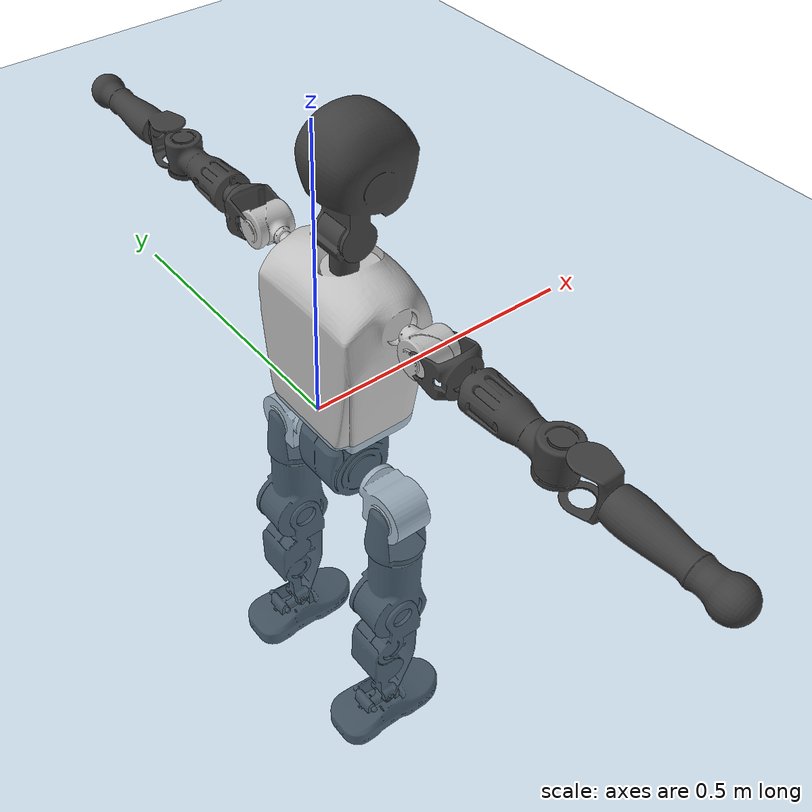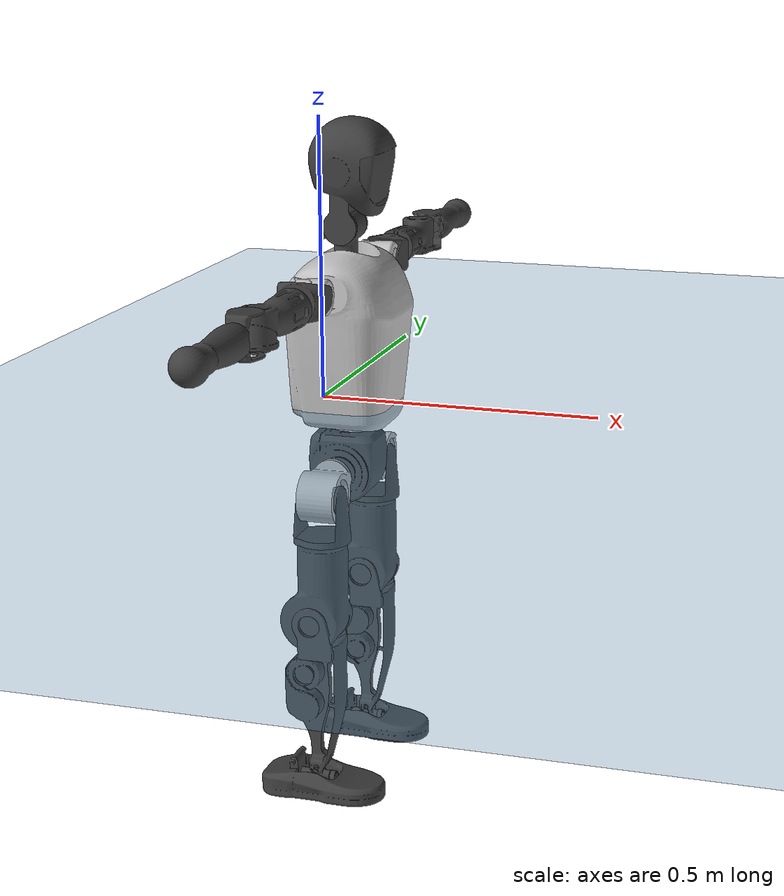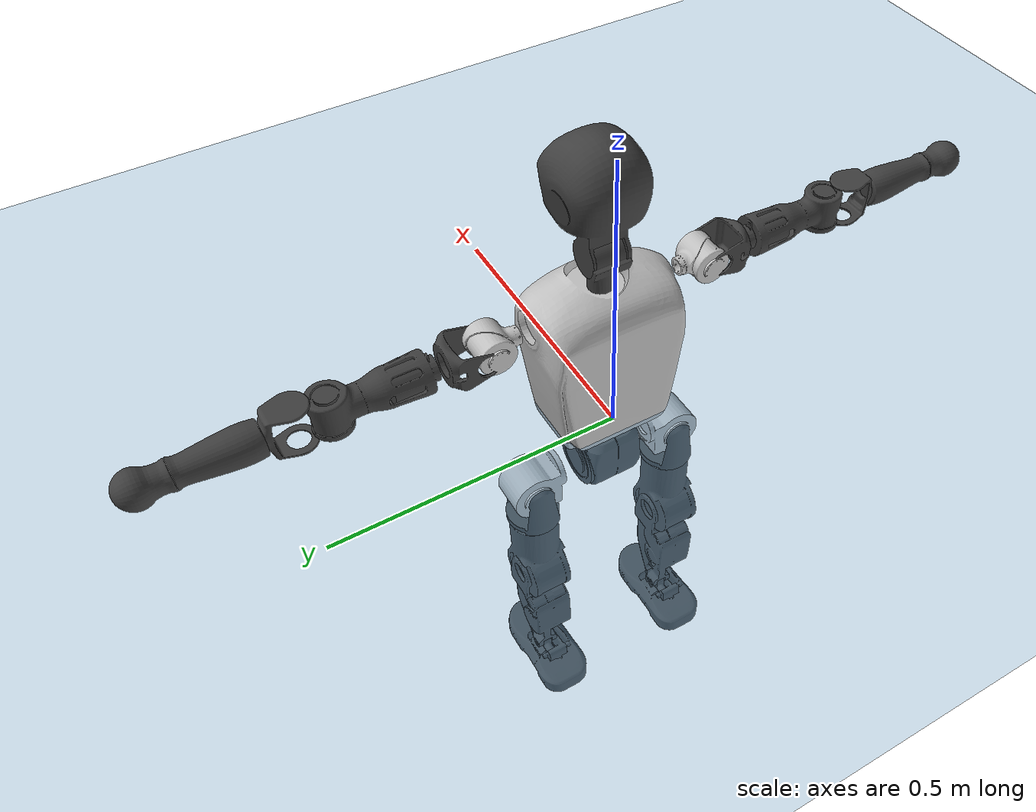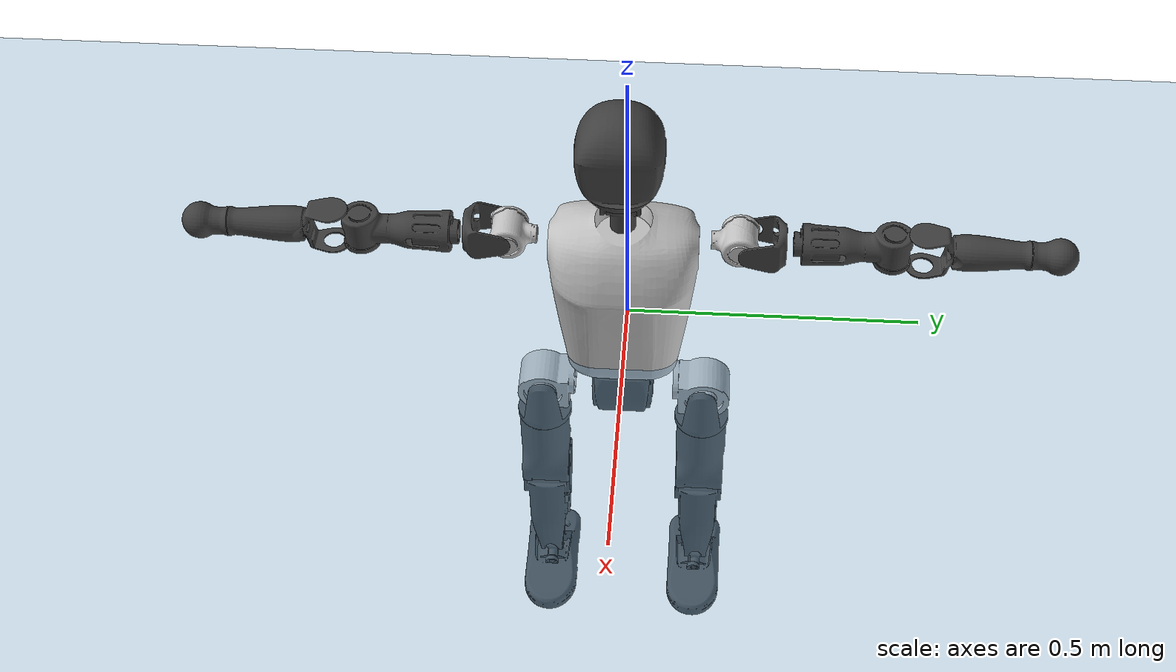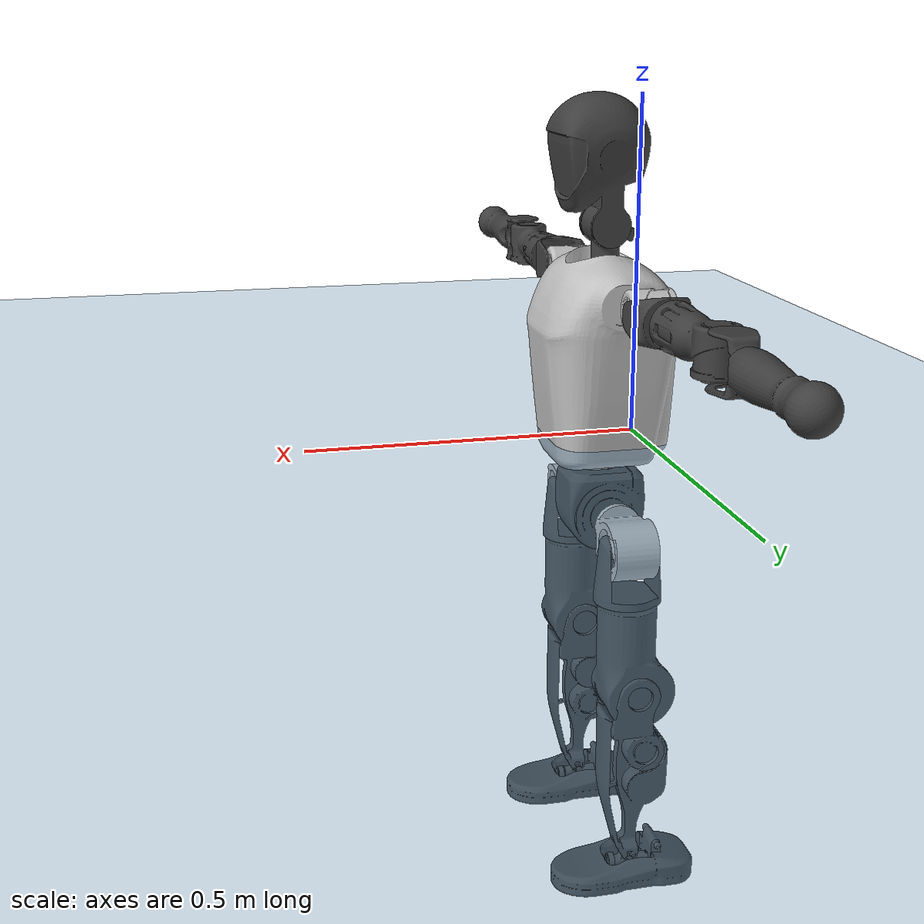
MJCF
<mujoco model="T1">
  <compiler angle="radian" assetdir="assets" balanceinertia="true" inertiafromgeom="false"/>

  <option timestep="0.005" density="1.2" viscosity="2e-05"/>

  <size nkey="1"/>

  <visual>
    <quality shadowsize="8192"/>
    <map shadowclip="0.5"/>
  </visual>

  <default>
    <default class="/">
      <joint armature="0.01" damping="0.01" frictionloss="0.1"/>
      <geom contype="0" conaffinity="0" group="1" solref="-1000 -80"/>
      <site size="0.01 0.005 0.005" group="5"/>
      <general forcelimited="true" biastype="affine" gainprm="25" biasprm="0 -25 -0.6"/>
      <default class="t1">
        <geom rgba="0.25 0.25 0.25 1"/>
        <default class="visual">
          <geom type="mesh" group="2"/>
        </default>
        <default class="collision">
          <geom group="3"/>
        </default>
        <default class="foot">
          <geom size="0.1115 0.05 0.015" type="box" condim="6" group="4" priority="1" solimp="0.015 1 0.015"/>
        </default>
        <default class="reward_collision_sphere">
          <geom group="5" rgba="1 0 0 1"/>
        </default>
      </default>
    </default>
  </default>

  <asset>
    <texture type="skybox" colorspace="auto" name="//unnamed_texture_0" builtin="gradient" rgb1="0.95 0.95 0.95" rgb2="0.95 0.95 0.95" width="100" height="600"/>
    <texture type="2d" colorspace="auto" name="texplane" builtin="checker" rgb1="0.345 0.575 0.748" rgb2="0.345 0.575 0.748" markrgb="1 1 1" width="512" height="512"/>
    <material name="MatPlane" class="/" texture="texplane" texuniform="true" texrepeat="2 2" specular="0.9"/>
    <mesh name="Trunk" class="/" file="Trunk.stl"/>
    <mesh name="H1" class="/" file="H1.stl"/>
    <mesh name="H2" class="/" file="H2.stl"/>
    <mesh name="AL1" class="/" file="AL1.stl"/>
    <mesh name="AL2" class="/" file="AL2.stl"/>
    <mesh name="AL3" class="/" file="AL3.stl"/>
    <mesh name="left_hand_link" class="/" file="left_hand_link.stl"/>
    <mesh name="AR1" class="/" file="AR1.stl"/>
    <mesh name="AR2" class="/" file="AR2.stl"/>
    <mesh name="AR3" class="/" file="AR3.stl"/>
    <mesh name="right_hand_link" class="/" file="right_hand_link.stl"/>
    <mesh name="Waist" class="/" file="Waist.stl"/>
    <mesh name="Hip_Pitch_Left" class="/" file="Hip_Pitch_Left.stl"/>
    <mesh name="Hip_Roll_Left" class="/" file="Hip_Roll_Left.stl"/>
    <mesh name="Hip_Yaw_Left" class="/" file="Hip_Yaw_Left.stl"/>
    <mesh name="Shank_Left" class="/" file="Shank_Left.stl"/>
    <mesh name="Ankle_Cross_Left" class="/" file="Ankle_Cross_Left.stl"/>
    <mesh name="left_foot_link" class="/" file="left_foot_link.stl"/>
    <mesh name="Hip_Pitch_Right" class="/" file="Hip_Pitch_Right.stl"/>
    <mesh name="Hip_Roll_Right" class="/" file="Hip_Roll_Right.stl"/>
    <mesh name="Hip_Yaw_Right" class="/" file="Hip_Yaw_Right.stl"/>
    <mesh name="Shank_Right" class="/" file="Shank_Right.stl"/>
    <mesh name="Ankle_Cross_Right" class="/" file="Ankle_Cross_Right.stl"/>
    <mesh name="right_foot_link" class="/" file="right_foot_link.stl"/>
  </asset>

  <worldbody>
    <geom name="floor" class="/" size="100 100 0.125" type="plane" group="0" material="MatPlane"/>
    <light name="toplight_shadow" class="/" pos="0 0 5" dir="0.0990148 0.0990148 -0.990148" type="directional" ambient="0.04 0.04 0.04" diffuse="0.55 0.55 0.55" specular="0.12 0.12 0.12"/>
    <light name="toplight_fill" class="/" pos="0 0 5" dir="0.0990148 0.0990148 -0.990148" type="directional" castshadow="false" ambient="0.04 0.04 0.04" diffuse="0.3 0.3 0.3" specular="0.08 0.08 0.08"/>
    <body name="trunk" childclass="t1" pos="-0.000304772 -0.00225441 -0.00200486" quat="1 -0.000291157 -6.59039e-05 8.947e-05">
      <inertial pos="0.0476598 0.000162216 0.110409" quat="0.999937 -0.00186512 -0.00110731 -0.0110184" mass="13.5534" diaginertia="0.0340812 0.31139 0.0634669"/>
      <joint name="//unnamed_joint_0" type="free" armature="0" damping="0" frictionloss="0"/>
      <geom name="//unnamed_geom_1" class="visual" rgba="0.76 0.76 0.76 1" mesh="Trunk"/>
      <geom name="//unnamed_geom_2" class="collision" size="0.0799592 0.106612 0.159918" pos="0.0495886 0 0.124487" type="box"/>
      <geom name="//unnamed_geom_3" class="reward_collision_sphere" size="0.122604" pos="0.0495886 0 0.10374"/>
      <geom name="//unnamed_geom_4" class="reward_collision_sphere" size="0.0159918" pos="0.0495886 0.113432 0"/>
      <geom name="//unnamed_geom_5" class="reward_collision_sphere" size="0.0159918" pos="0.0495886 -0.113432 0"/>
      <geom name="//unnamed_geom_6" class="reward_collision_sphere" size="0.0159918" pos="0.0495886 0.142791 0.186731"/>
      <geom name="//unnamed_geom_7" class="reward_collision_sphere" size="0.0159918" pos="0.0495886 -0.142791 0.186731"/>
      <site name="imu" pos="-0.0141418 -0.0136119 0.0065357" size="0.0106612"/>
      <camera name="track" pos="0 -2.66899 0" quat="0.707107 0.707107 0 0" mode="trackcom"/>
      <camera name="ego_camera" pos="0.10083 0 0.435706" quat="-0.5 -0.5 0.5 0.5"/>
      <body name="H1" pos="0.0485184 -0.00190264 0.253467" quat="1 0.000173643 2.99389e-05 0.000155276">
        <inertial pos="-0.000789262 -0.00182187 0.0592808" quat="0.761488 -0.0177958 0.00756812 0.647891" mass="0.528411" diaginertia="9.30931e-05 0.000928566 0.000178531"/>
        <joint name="AAHead_yaw" pos="0 0 0" axis="0.00671597 0.00948489 0.999932" range="-1.56615 1.54496" armature="0.0112982" damping="0.0239695" frictionloss="0.107928"/>
        <geom name="//unnamed_geom_8" class="visual" mesh="H1"/>
        <body name="H2" pos="0.000137426 -0.00236925 0.0618966" quat="1 -1.61168e-05 -0.000166824 -0.000405907">
          <inertial pos="0.00356075 0.000431609 0.100339" quat="0.988086 0.111237 -0.0732515 -0.0771186" mass="0.757654" diaginertia="0.000785074 0.0080364 0.00210972"/>
          <joint name="Head_pitch" pos="0 0 0" axis="-0.00305292 -0.999993 -0.00208903" range="-1.20131 0.342131" armature="0.0104263" damping="0.00958796" frictionloss="0.0919023"/>
          <geom name="//unnamed_geom_9" class="visual" mesh="H2"/>
          <geom name="//unnamed_geom_10" class="collision" size="0.0852898" pos="0.00826477 0 0.114114"/>
          <geom name="//unnamed_geom_11" class="reward_collision_sphere" size="0.0959511" pos="0.0165295 0 0.10374"/>
        </body>
      </body>
      <body name="AL1" pos="0.0456292 0.141261 0.22469" quat="1 -3.53482e-06 -0.00014675 -0.000413603">
        <inertial pos="-0.000535369 0.0571517 -0.00276652" quat="0.507769 0.494578 -0.500862 0.49669" mass="0.653832" diaginertia="0.000544893 0.0055913 0.000349567"/>
        <joint name="Left_Shoulder_Pitch" pos="0 0 0" axis="-0.000751304 0.999998 -0.00192377" stiffness="0.000434929" range="-3.28766 1.25881" armature="0.0105079" damping="0" frictionloss="0.108143"/>
        <geom name="//unnamed_geom_12" class="visual" rgba="0.76 0.76 0.76 1" mesh="AL1"/>
        <body name="AL2" pos="0.000886189 0.064909 -0.00275734" quat="0.999999 -0.00116858 -7.58893e-05 0.000535326">
          <inertial pos="0.00441056 0.0509834 0.00269963" quat="0.487997 0.511721 -0.487985 0.511733" mass="0.197883" diaginertia="0.00015148 0.00144114 0.000213012"/>
          <joint name="Left_Shoulder_Roll" pos="0 0 0" axis="-0.999988 -0.00409954 -0.00274328" range="-1.57934 1.73817" armature="0.0113804" damping="0.005864" frictionloss="0.103043"/>
          <geom name="//unnamed_geom_13" class="visual" mesh="AL2"/>
          <body name="AL3" pos="0.00051958 0.0807984 0.00326964" quat="1 -0.00036283 0.000232186 0.000107254">
            <inertial pos="-0.00101057 0.112856 -0.0029864" quat="0.698219 0.715846 -0.00543156 -0.00498264" mass="1.30668" diaginertia="0.0049945 0.0558283 0.000780186"/>
            <joint name="Left_Elbow_Pitch" pos="0 0 0" axis="-0.012528 -0.999916 -0.00335677" stiffness="0.00736657" range="-2.27263 2.29117" armature="0.0106363" damping="0.0234641" frictionloss="0.109485"/>
            <geom name="//unnamed_geom_14" class="visual" mesh="AL3"/>
            <geom name="//unnamed_geom_15" class="collision" size="0.0319837 0.0799592" pos="0 0.0667248 0" quat="0.707105 0.707108 0 0" type="cylinder"/>
            <geom name="//unnamed_geom_16" class="reward_collision_sphere" size="0.0383804"/>
            <body name="left_hand_link" pos="0.0028624 0.197664 -0.000453552" quat="1 -4.21065e-06 2.18981e-06 -1.20989e-06">
              <inertial pos="-0.000949963 0.146806 -0.000465684" quat="0.713241 0.700914 0.00237205 -0.00110805" mass="0.397833" diaginertia="0.00307208 0.0348349 0.000259946"/>
              <joint name="Left_Elbow_Yaw" pos="0 0 0" axis="0.00380327 0.00463017 0.999982" stiffness="0.000202276" range="-2.46591 0.0198041" armature="0.0104434" damping="0.0106287" frictionloss="0.118538"/>
              <geom name="//unnamed_geom_17" class="visual" mesh="left_hand_link"/>
              <geom name="//unnamed_geom_18" class="collision" size="0.0319837 0.0932858" pos="0 0.173485 0" quat="0.707105 0.707108 0 0" type="cylinder"/>
              <geom name="//unnamed_geom_19" class="reward_collision_sphere" size="0.0533062"/>
              <geom name="//unnamed_geom_20" class="reward_collision_sphere" size="0.0373143" pos="0 0.146795 0"/>
              <geom name="//unnamed_geom_21" class="reward_collision_sphere" size="0.0373143" pos="0 0.286917 0"/>
            </body>
          </body>
        </body>
      </body>
      <body name="AR1" pos="0.0498482 -0.141387 0.226572" quat="0.999999 0.00110053 -0.000156044 -7.79534e-05">
        <inertial pos="-0.00359447 -0.0597038 -0.00112673" quat="0.502498 0.492279 -0.506564 0.498547" mass="0.677112" diaginertia="0.000544993 0.00583318 0.00037438"/>
        <joint name="Right_Shoulder_Pitch" pos="0 0 0" axis="0.00637406 -0.999964 -0.00553773" stiffness="0.000600283" range="-1.23317 3.31539" armature="0.0104292" damping="0.000878597" frictionloss="0.103022"/>
        <geom name="//unnamed_geom_22" class="visual" rgba="0.76 0.76 0.76 1" mesh="AR1"/>
        <body name="AR2" pos="-9.49875e-05 -0.0617769 0.00252595" quat="1 -2.63043e-05 -1.34525e-05 2.53439e-05">
          <inertial pos="0.000227025 -0.0506781 0.000707973" quat="0.507781 0.487454 -0.513333 0.490955" mass="0.19686" diaginertia="0.000164417 0.00149565 0.000225513"/>
          <joint name="Right_Shoulder_Roll" pos="0 0 0" axis="-0.999999 -0.00148674 1.6679e-05" range="-1.73873 1.57733" armature="0.0107585" damping="0.0071852" frictionloss="0.113712"/>
          <geom name="//unnamed_geom_23" class="visual" mesh="AR2"/>
          <body name="AR3" pos="0.00237571 -0.0783158 -0.0026751" quat="0.999999 -0.00107088 -5.40558e-05 -0.00107768">
            <inertial pos="0.00153538 -0.113144 -0.000931598" quat="0.709554 0.704521 -0.0134059 -0.00219721" mass="1.27689" diaginertia="0.00515034 0.0557967 0.000752298"/>
            <joint name="Right_Elbow_Pitch" pos="0 0 0" axis="0.00119981 0.999942 0.010682" range="-2.26429 2.30362" armature="0.010485" damping="0.011818" frictionloss="0.10915"/>
            <geom name="//unnamed_geom_24" class="visual" mesh="AR3"/>
            <geom name="//unnamed_geom_25" class="collision" size="0.0319837 0.0799592" pos="0 -0.0667248 0" quat="0.707105 0.707108 0 0" type="cylinder"/>
            <geom name="//unnamed_geom_26" class="reward_collision_sphere" size="0.0383804"/>
            <body name="right_hand_link" pos="-0.00136494 -0.194411 0.000133279" quat="0.999999 -0.000120144 0.0013038 0.000512444">
              <inertial pos="-0.00046147 -0.143575 0.00295351" quat="0.703917 0.71028 0.00140446 0.00150559" mass="0.402435" diaginertia="0.00328509 0.0359932 0.000258336"/>
              <joint name="Right_Elbow_Yaw" pos="0 0 0" axis="0.00192288 0.00377064 0.999991" range="0.0513041 2.44766" armature="0.0111848" damping="0.00431358" frictionloss="0.111589"/>
              <geom name="//unnamed_geom_27" class="visual" mesh="right_hand_link"/>
              <geom name="//unnamed_geom_28" class="collision" size="0.0319837 0.0932858" pos="0 -0.173485 0" quat="0.707105 0.707108 0 0" type="cylinder"/>
              <geom name="//unnamed_geom_29" class="reward_collision_sphere" size="0.0533062"/>
              <geom name="//unnamed_geom_30" class="reward_collision_sphere" size="0.0373143" pos="0 -0.146795 0"/>
              <geom name="//unnamed_geom_31" class="reward_collision_sphere" size="0.0373143" pos="0 -0.286917 0"/>
            </body>
          </body>
        </body>
      </body>
      <body name="Waist" pos="0.0479113 -0.00194076 -0.119283" quat="0.999999 0.000122711 0.000717834 0.000879917">
        <inertial pos="0.00222677 0.000455032 0.00804497" quat="0.983138 0.000507768 -0.182813 0.00433793" mass="2.92601" diaginertia="0.00199155 0.0219117 0.00564718"/>
        <joint name="Waist" pos="0 0 0" axis="-0.00656259 -0.00924172 0.999936" range="-1.62641 1.5751" armature="0.0119421" damping="0.0234702" frictionloss="0.105743"/>
        <geom name="//unnamed_geom_32" class="visual" mesh="Waist"/>
        <body name="Hip_Pitch_Left" pos="0.000408163 0.14348 -0.00026089" quat="1 0.000301671 -5.16211e-05 -0.000369321">
          <inertial pos="0.00135367 -0.00768099 -0.0162609" quat="0.974178 0.225081 0.0101872 0.0145467" mass="1.25257" diaginertia="0.000699904 0.00639263 0.00151632"/>
          <joint name="Left_Hip_Pitch" pos="0 0 0" axis="0.00578482 0.999981 0.00192155" stiffness="0.00941989" range="-1.79693 1.5923" armature="0.0110711" damping="0.0242521" frictionloss="0.118275"/>
          <geom name="//unnamed_geom_33" class="visual" rgba="0.76 0.76 0.76 1" mesh="Hip_Pitch_Left"/>
          <body name="Hip_Roll_Left" pos="0.000647166 -0.00323787 -0.0226156" quat="1 0.000233643 -0.000531791 -0.000340536">
            <inertial pos="-0.00192552 -0.000323639 -0.0529026" quat="0.706486 -0.00327255 -0.00573631 0.707696" mass="0.475081" diaginertia="0.000672381 0.00682811 0.00063931"/>
            <joint name="Left_Hip_Roll" pos="0 0 0" axis="-0.999968 -0.00323881 -0.00724772" stiffness="0.00608832" range="-1.56576 0.21554" armature="0.0112506" damping="0.00067642" frictionloss="0.0915046"/>
            <geom name="//unnamed_geom_34" class="visual" mesh="Hip_Roll_Left"/>
            <geom name="//unnamed_geom_35" class="reward_collision_sphere" size="0.0586368"/>
            <body name="Hip_Yaw_Left" pos="-0.00292353 0.000600175 -0.085524" quat="1 3.39507e-07 1.86721e-06 1.47934e-05">
              <inertial pos="-0.00763832 0.001685 -0.093163" quat="0.695184 -0.0342895 -0.0328335 0.717262" mass="2.59291" diaginertia="0.0101213 0.106772 0.00317798"/>
              <joint name="Left_Hip_Yaw" pos="0 0 0" axis="-0.00192787 0.00129327 -0.999997" range="-1.06475 1.03385" armature="0.010559" damping="0" frictionloss="0.104148"/>
              <geom name="//unnamed_geom_36" class="visual" mesh="Hip_Yaw_Left"/>
              <geom name="//unnamed_geom_37" class="collision" size="0.0533062 0.0852898" type="cylinder"/>
              <body name="Shank_Left" pos="-0.0113646 -0.000601351 -0.136736" quat="1 4.87663e-05 -0.000171517 -0.000137088">
                <inertial pos="-0.00565176 0.00223168 -0.127505" quat="0.99756 0.00142141 -0.0239044 0.0655798" mass="2.12495" diaginertia="0.0136169 0.148686 0.0022924"/>
                <joint name="Left_Knee_Pitch" pos="0 0 0" axis="0.000290959 0.999984 -0.00560847" stiffness="0.00840693" range="0.0532118 2.28547" armature="0.0104555" damping="0.0160241" frictionloss="0.101622"/>
                <geom name="//unnamed_geom_38" class="visual" mesh="Shank_Left"/>
                <geom name="//unnamed_geom_39" class="collision" size="0.0533062 0.0799592" pos="0 0 -0.124487" type="cylinder"/>
                <geom name="//unnamed_geom_40" class="reward_collision_sphere" size="0.069298"/>
                <body name="Ankle_Cross_Left" pos="0.00131111 -0.000595899 -0.289049" quat="1 -0.000175036 8.74454e-05 -3.65532e-05">
                  <inertial pos="-0.00551401 0.00258637 -0.00548105" quat="0.45271 0.550069 0.549772 0.436151" mass="0.091677" diaginertia="1.15424e-05 0.000105694 1.36848e-05"/>
                  <joint name="Left_Ankle_Pitch" pos="0 0 0" axis="-0.000909855 0.999999 -0.00101281" range="-0.84725 0.356384" armature="0.00931657" damping="0" frictionloss="0.115882"/>
                  <geom name="//unnamed_geom_41" class="visual" mesh="Ankle_Cross_Left"/>
                  <body name="left_foot_link" pos="-0.00323818 -0.00250355 -0.0120346" quat="0.999999 -5.56951e-05 0.00123807 -0.000341449">
                    <inertial pos="-0.00263967 -6.65846e-05 -0.0114724" quat="-0.00814459 0.623208 -0.00189816 0.782012" mass="0.802143" diaginertia="0.00100055 0.0102286 0.00256812"/>
                    <joint name="Left_Ankle_Roll" pos="0 0 0" axis="-1 -0.000518198 -0.000257444" range="-0.456004 0.442481" armature="0.0106657" damping="0.000421896" frictionloss="0.106771"/>
                    <geom name="//unnamed_geom_42" class="visual" mesh="left_foot_link"/>
                    <geom name="left_foot" class="foot" size="0.115092 0.0473092 0.0150232" pos="0.00826477 0 -0.0155609"/>
                    <geom name="//unnamed_geom_44" class="reward_collision_sphere" size="0.0554384" pos="0.00826477 0 -0.0155609"/>
                    <geom name="//unnamed_geom_45" class="reward_collision_sphere" size="0.0319837" pos="0.0785153 -0.0306934 -0.0155609"/>
                    <geom name="//unnamed_geom_46" class="reward_collision_sphere" size="0.0319837" pos="-0.0578534 -0.0306934 -0.0155609"/>
                    <site name="left_foot" class="foot" pos="0.00826477 0 -0.0155609" size="0.0106612"/>
                  </body>
                </body>
              </body>
            </body>
          </body>
        </body>
        <body name="Hip_Pitch_Right" pos="0.000360761 -0.139851 0.00232094" quat="1 -0.00026575 -0.000479965 -7.14503e-05">
          <inertial pos="-0.00184753 0.00816535 -0.0169293" quat="0.97487 -0.221885 0.0190673 -0.00568649" mass="1.27759" diaginertia="0.000720062 0.00628249 0.0015541"/>
          <joint name="Right_Hip_Pitch" pos="0 0 0" axis="-0.000636219 -0.999999 -0.00154161" stiffness="0.00262594" range="-1.56657 1.79364" armature="0.0092174" damping="0.0115238" frictionloss="0.109312"/>
          <geom name="//unnamed_geom_47" class="visual" rgba="0.76 0.76 0.76 1" mesh="Hip_Pitch_Right"/>
          <body name="Hip_Roll_Right" pos="0.000318235 -0.00104934 -0.0225612" quat="0.999999 0.00104358 -0.000986497 -0.000611109">
            <inertial pos="0.00147815 0.00210858 -0.0528839" quat="0.707773 -0.00413881 -0.00412273 0.706416" mass="0.447873" diaginertia="0.000670907 0.00648358 0.000606939"/>
            <joint name="Right_Hip_Roll" pos="0 0 0" axis="-0.999997 0.00200622 0.00114334" range="-0.202855 1.54454" armature="0.0107216" damping="0.013962" frictionloss="0.121544"/>
            <geom name="//unnamed_geom_48" class="visual" mesh="Hip_Roll_Right"/>
            <geom name="//unnamed_geom_49" class="reward_collision_sphere" size="0.0586368"/>
            <body name="Hip_Yaw_Right" pos="-0.00184035 -0.00154802 -0.0845724" quat="1 -0.000228545 0.000228182 -0.000113016">
              <inertial pos="-0.00596874 -0.00296565 -0.093545" quat="0.719486 -0.0281562 -0.0270305 0.69341" mass="2.69986" diaginertia="0.0099885 0.113002 0.00306141"/>
              <joint name="Right_Hip_Yaw" pos="0 0 0" axis="-0.000594095 0.000516672 -1" range="-1.00653 1.02634" armature="0.0116165" damping="0.0119216" frictionloss="0.10774"/>
              <geom name="//unnamed_geom_50" class="visual" mesh="Hip_Yaw_Right"/>
              <geom name="//unnamed_geom_51" class="collision" size="0.0533062 0.0852898" type="cylinder"/>
              <body name="Shank_Right" pos="-0.0130892 0.000490293 -0.137998" quat="0.999999 0.00020071 -0.000562193 -0.00125213">
                <inertial pos="-0.00574498 3.35668e-05 -0.129537" quat="0.99912 0.000414927 -0.0250387 -0.0336382" mass="2.17591" diaginertia="0.0133128 0.142675 0.00238995"/>
                <joint name="Right_Knee_Pitch" pos="0 0 0" axis="0.00648343 -0.999956 -0.00673006" stiffness="0.00926081" range="-2.31682 0.0371969" armature="0.0109683" damping="0.019349" frictionloss="0.107618"/>
                <geom name="//unnamed_geom_52" class="visual" mesh="Shank_Right"/>
                <geom name="//unnamed_geom_53" class="collision" size="0.0533062 0.0799592" pos="0 0 -0.124487" type="cylinder"/>
                <geom name="//unnamed_geom_54" class="reward_collision_sphere" size="0.069298"/>
                <body name="Ankle_Cross_Right" pos="-0.0020102 0.00100869 -0.288944" quat="1 -3.68083e-05 0.000232771 -0.000102096">
                  <inertial pos="-0.0031029 -0.0025212 -0.00828152" quat="0.448834 0.556389 0.54353 0.439948" mass="0.0935438" diaginertia="1.14393e-05 0.000111593 1.44988e-05"/>
                  <joint name="Right_Ankle_Pitch" pos="0 0 0" axis="0.00238202 -0.999916 0.0127145" range="-0.386473 0.836137" armature="0.0107535" damping="0.00823944" frictionloss="0.102145"/>
                  <geom name="//unnamed_geom_55" class="visual" mesh="Ankle_Cross_Right"/>
                  <body name="right_foot_link" pos="0.00116202 -0.00082574 -0.014573" quat="1 2.48104e-05 -8.26347e-05 -0.000111173">
                    <inertial pos="-0.00052892 -0.00107873 -0.0091604" quat="-0.00232504 0.620497 0.000904361 0.784205" mass="0.824329" diaginertia="0.00102227 0.00968758 0.0025676"/>
                    <joint name="Right_Ankle_Roll" pos="0 0 0" axis="-0.999931 -0.00953607 -0.00691323" range="-0.454877 0.442843" armature="0.0102403" damping="0.00470767" frictionloss="0.105516"/>
                    <geom name="//unnamed_geom_56" class="visual" mesh="right_foot_link"/>
                    <geom name="right_foot" class="foot" size="0.107307 0.0454997 0.0145817" pos="0.00826477 0 -0.0155609"/>
                    <geom name="//unnamed_geom_58" class="reward_collision_sphere" size="0.0426449"/>
                    <geom name="//unnamed_geom_59" class="reward_collision_sphere" size="0.0319837" pos="0.00826477 0 -0.0155609"/>
                    <geom name="//unnamed_geom_60" class="reward_collision_sphere" size="0.0319837" pos="0.0785153 0.0306934 -0.0155609"/>
                    <geom name="//unnamed_geom_61" class="reward_collision_sphere" size="0.0319837" pos="-0.0578534 0.0306934 -0.0155609"/>
                    <site name="right_foot" class="foot" pos="0.00826477 0 -0.0155609" size="0.0106612"/>
                  </body>
                </body>
              </body>
            </body>
          </body>
        </body>
      </body>
    </body>
  </worldbody>

  <contact>
    <pair class="/" geom1="floor" geom2="left_foot" name="//unnamed_contact_0"/>
    <pair class="/" geom1="floor" geom2="right_foot" name="//unnamed_contact_1"/>
  </contact>

  <actuator>
    <general name="AAHead_yaw" class="/" joint="AAHead_yaw" forcerange="-7.91418 7.91418" gainprm="24.8465" biasprm="0 -24.8465 -0.618978"/>
    <general name="Head_pitch" class="/" joint="Head_pitch" forcerange="-7.39372 7.39372" gainprm="24.8465" biasprm="0 -24.8465 -0.618978"/>
    <general name="Left_Shoulder_Pitch" class="/" joint="Left_Shoulder_Pitch" forcerange="-16.9859 16.9859" gainprm="24.8465" biasprm="0 -24.8465 -0.618978"/>
    <general name="Left_Shoulder_Roll" class="/" joint="Left_Shoulder_Roll" forcerange="-17.6842 17.6842" gainprm="24.8465" biasprm="0 -24.8465 -0.618978"/>
    <general name="Left_Elbow_Pitch" class="/" joint="Left_Elbow_Pitch" forcerange="-19.4041 19.4041" gainprm="24.8465" biasprm="0 -24.8465 -0.618978"/>
    <general name="Left_Elbow_Yaw" class="/" joint="Left_Elbow_Yaw" forcerange="-17.9691 17.9691" gainprm="24.8465" biasprm="0 -24.8465 -0.618978"/>
    <general name="Right_Shoulder_Pitch" class="/" joint="Right_Shoulder_Pitch" forcerange="-20.9121 20.9121" gainprm="24.8465" biasprm="0 -24.8465 -0.618978"/>
    <general name="Right_Shoulder_Roll" class="/" joint="Right_Shoulder_Roll" forcerange="-17.1573 17.1573" gainprm="24.8465" biasprm="0 -24.8465 -0.618978"/>
    <general name="Right_Elbow_Pitch" class="/" joint="Right_Elbow_Pitch" forcerange="-19.9514 19.9514" gainprm="24.8465" biasprm="0 -24.8465 -0.618978"/>
    <general name="Right_Elbow_Yaw" class="/" joint="Right_Elbow_Yaw" forcerange="-20.5814 20.5814" gainprm="24.8465" biasprm="0 -24.8465 -0.618978"/>
    <general name="Waist" class="/" joint="Waist" forcerange="-35.1487 35.1487" gainprm="24.8465" biasprm="0 -24.8465 -0.618978"/>
    <general name="Left_Hip_Pitch" class="/" joint="Left_Hip_Pitch" forcerange="-46.5663 46.5663" gainprm="24.8465" biasprm="0 -24.8465 -0.618978"/>
    <general name="Left_Hip_Roll" class="/" joint="Left_Hip_Roll" forcerange="-34.8118 34.8118" gainprm="24.8465" biasprm="0 -24.8465 -0.618978"/>
    <general name="Left_Hip_Yaw" class="/" joint="Left_Hip_Yaw" forcerange="-29.5164 29.5164" gainprm="24.8465" biasprm="0 -24.8465 -0.618978"/>
    <general name="Left_Knee_Pitch" class="/" joint="Left_Knee_Pitch" forcerange="-62.7842 62.7842" gainprm="24.8465" biasprm="0 -24.8465 -0.618978"/>
    <general name="Left_Ankle_Pitch" class="/" joint="Left_Ankle_Pitch" forcerange="-21.2657 21.2657" gainprm="24.8465" biasprm="0 -24.8465 -0.618978"/>
    <general name="Left_Ankle_Roll" class="/" joint="Left_Ankle_Roll" forcerange="-16.9942 16.9942" gainprm="24.8465" biasprm="0 -24.8465 -0.618978"/>
    <general name="Right_Hip_Pitch" class="/" joint="Right_Hip_Pitch" forcerange="-47.9651 47.9651" gainprm="24.8465" biasprm="0 -24.8465 -0.618978"/>
    <general name="Right_Hip_Roll" class="/" joint="Right_Hip_Roll" forcerange="-31.7207 31.7207" gainprm="24.8465" biasprm="0 -24.8465 -0.618978"/>
    <general name="Right_Hip_Yaw" class="/" joint="Right_Hip_Yaw" forcerange="-32.9039 32.9039" gainprm="24.8465" biasprm="0 -24.8465 -0.618978"/>
    <general name="Right_Knee_Pitch" class="/" joint="Right_Knee_Pitch" forcerange="-63.9101 63.9101" gainprm="24.8465" biasprm="0 -24.8465 -0.618978"/>
    <general name="Right_Ankle_Pitch" class="/" joint="Right_Ankle_Pitch" forcerange="-20.9431 20.9431" gainprm="24.8465" biasprm="0 -24.8465 -0.618978"/>
    <general name="Right_Ankle_Roll" class="/" joint="Right_Ankle_Roll" forcerange="-14.3111 14.3111" gainprm="24.8465" biasprm="0 -24.8465 -0.618978"/>
  </actuator>

  <sensor>
    <gyro site="imu" name="imu_angular_velocity"/>
    <velocimeter site="imu" name="imu_linear_velocity"/>
    <framelinvel objtype="site" objname="left_foot" name="left_foot_global_linear_velocity"/>
    <framelinvel objtype="site" objname="right_foot" name="right_foot_global_linear_velocity"/>
  </sensor>

  <keyframe>
    <key name="home" qpos="0 0 0.6385 1 0 0 0 0 0 0 1.4 0 -0.4 0 -1.4 0 0.4 0 -0.4 0 0 0.8 -0.4 0 0.4 0 0 -0.8 0.4 0"/>
  </keyframe>
</mujoco>
